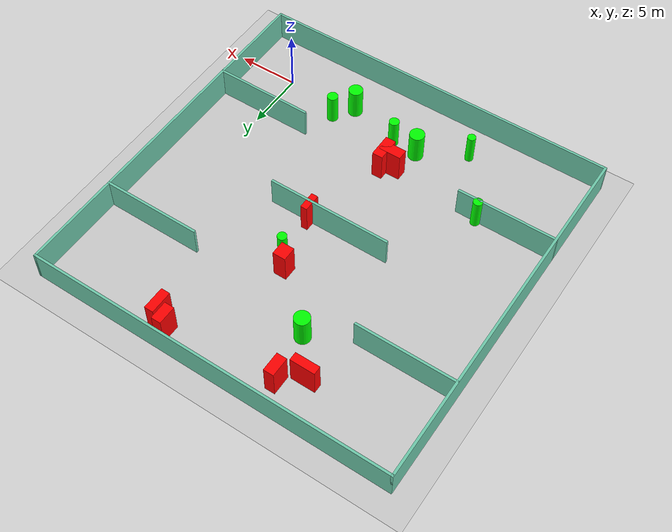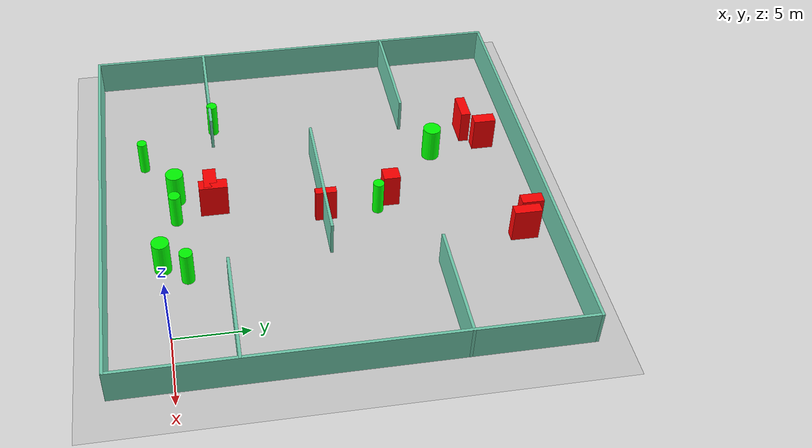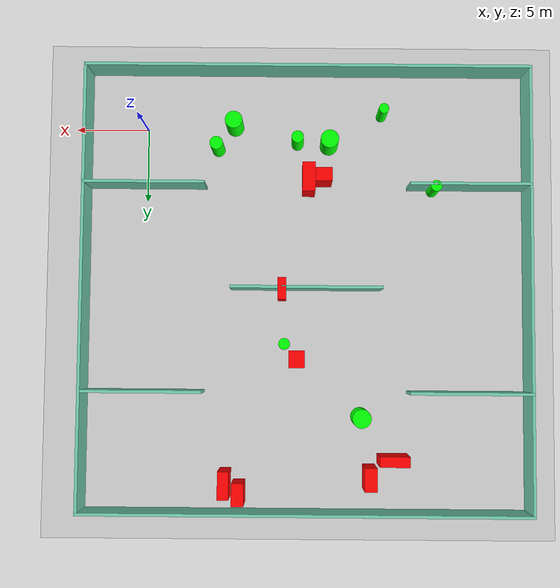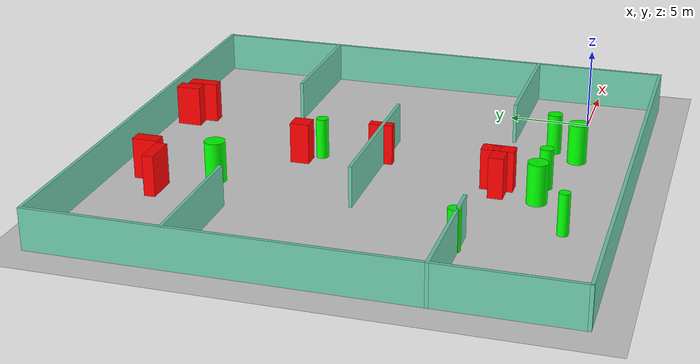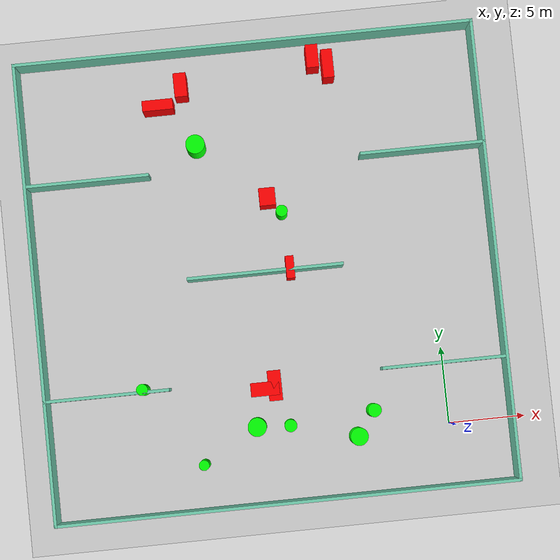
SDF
<sdf version="1.7">
 <world name="default">
  <light name="sun" type="directional">
   <pose>0 0 10 0 -0 0</pose>
   <diffuse>0.8 0.8 0.8 1</diffuse>
   <specular>0.2 0.2 0.2 1</specular>
   <attenuation>
    <range>1000</range>
    <constant>0.9</constant>
    <linear>0.01</linear>
    <quadratic>0.001</quadratic>
   </attenuation>
   <direction>-0.5 0.1 -0.9</direction>
   <spot><inner_angle>0</inner_angle><outer_angle>0</outer_angle><falloff>0</falloff></spot>
  </light>
  <model name="ground_plane">
   <static>1</static>
   <link name="link">
    <collision name="collision">
     <geometry><plane><normal>0 0 1</normal><size>100 100</size></plane></geometry>
     <surface>
      <contact><collide_bitmask>65535</collide_bitmask></contact>
      <friction><ode><mu>100</mu><mu2>50</mu2></ode></friction>
     </surface>
    </collision>
    <visual name="visual">
     <cast_shadows>0</cast_shadows>
     <geometry><plane><normal>0 0 1</normal><size>100 100</size></plane></geometry>
     <material>
      <script><uri>file://media/materials/scripts/gazebo.material</uri><name>Gazebo/Grey</name></script>
     </material>
    </visual>
   </link>
  </model>
  <gravity>0 0 -9.8</gravity>
  <magnetic_field>6e-06 2.3e-05 -4.2e-05</magnetic_field>
  <atmosphere type="adiabatic"/>
  <physics type="ode">
   <max_step_size>0.001</max_step_size>
   <real_time_factor>1</real_time_factor>
   <real_time_update_rate>1000</real_time_update_rate>
  </physics>
  <scene><ambient>0.4 0.4 0.4 1</ambient><background>0.7 0.7 0.7 1</background><shadows>1</shadows></scene>
  <spherical_coordinates>
   <surface_model>EARTH_WGS84</surface_model>
   <latitude_deg>0</latitude_deg>
   <longitude_deg>0</longitude_deg>
   <elevation>0</elevation>
   <heading_deg>0</heading_deg>
  </spherical_coordinates>
  <model name="my_base_walls">
   <link name="Wall_10">
    <collision name="Wall_10_Collision">
     <geometry><box><size>8.2 0.2 2.5</size></box></geometry>
     <pose>0 0 1.25 0 -0 0</pose>
    </collision>
    <visual name="Wall_10_Visual">
     <pose>0 0 1.25 0 -0 0</pose>
     <geometry><box><size>8.2 0.2 2.5</size></box></geometry>
     <material>
      <script><uri>file://media/materials/scripts/gazebo.material</uri><name>Gazebo/Grey</name></script>
      <ambient>0.435294 0.796078 0.67451 1</ambient>
     </material>
     <meta><layer>0</layer></meta>
    </visual>
    <pose>-11 -7 0 0 -0 0</pose>
   </link>
   <link name="Wall_12">
    <collision name="Wall_12_Collision">
     <geometry><box><size>8.2 0.2 2.5</size></box></geometry>
     <pose>0 0 1.25 0 -0 0</pose>
    </collision>
    <visual name="Wall_12_Visual">
     <pose>0 0 1.25 0 -0 0</pose>
     <geometry><box><size>8.2 0.2 2.5</size></box></geometry>
     <material>
      <script><uri>file://media/materials/scripts/gazebo.material</uri><name>Gazebo/Grey</name></script>
      <ambient>0.435294 0.796078 0.67451 1</ambient>
     </material>
     <meta><layer>0</layer></meta>
    </visual>
    <pose>-11 7 0 0 -0 0</pose>
   </link>
   <link name="Wall_14">
    <collision name="Wall_14_Collision">
     <geometry><box><size>8.2 0.2 2.5</size></box></geometry>
     <pose>0 0 1.25 0 -0 0</pose>
    </collision>
    <visual name="Wall_14_Visual">
     <pose>0 0 1.25 0 -0 0</pose>
     <geometry><box><size>8.2 0.2 2.5</size></box></geometry>
     <material>
      <script><uri>file://media/materials/scripts/gazebo.material</uri><name>Gazebo/Grey</name></script>
      <ambient>0.435294 0.796078 0.67451 1</ambient>
     </material>
     <meta><layer>0</layer></meta>
    </visual>
    <pose>11 7 0 0 -0 3.14159</pose>
   </link>
   <link name="Wall_16">
    <collision name="Wall_16_Collision">
     <geometry><box><size>10.2 0.2 2.5</size></box></geometry>
     <pose>0 0 1.25 0 -0 0</pose>
    </collision>
    <visual name="Wall_16_Visual">
     <pose>0 0 1.25 0 -0 0</pose>
     <geometry><box><size>10.2 0.2 2.5</size></box></geometry>
     <material>
      <script><uri>file://media/materials/scripts/gazebo.material</uri><name>Gazebo/Grey</name></script>
      <ambient>0.435294 0.796078 0.67451 1</ambient>
     </material>
     <meta><layer>0</layer></meta>
    </visual>
    <pose>0 0 0 0 -0 3.14159</pose>
   </link>
   <link name="Wall_2">
    <collision name="Wall_2_Collision">
     <geometry><box><size>30.2 0.2 2.5</size></box></geometry>
     <pose>0 0 1.25 0 -0 0</pose>
    </collision>
    <visual name="Wall_2_Visual">
     <pose>0 0 1.25 0 -0 0</pose>
     <geometry><box><size>30.2 0.2 2.5</size></box></geometry>
     <material>
      <script><uri>file://media/materials/scripts/gazebo.material</uri><name>Gazebo/Grey</name></script>
      <ambient>0.435294 0.796078 0.67451 1</ambient>
     </material>
     <meta><layer>0</layer></meta>
    </visual>
    <pose>0 -15 0 0 -0 3.14159</pose>
   </link>
   <link name="Wall_3">
    <collision name="Wall_3_Collision">
     <geometry><box><size>30.2 0.2 2.5</size></box></geometry>
     <pose>0 0 1.25 0 -0 0</pose>
    </collision>
    <visual name="Wall_3_Visual">
     <pose>0 0 1.25 0 -0 0</pose>
     <geometry><box><size>30.2 0.2 2.5</size></box></geometry>
     <material>
      <script><uri>file://media/materials/scripts/gazebo.material</uri><name>Gazebo/Grey</name></script>
      <ambient>0.435294 0.796078 0.67451 1</ambient>
     </material>
     <meta><layer>0</layer></meta>
    </visual>
    <pose>-15 0 0 0 -0 1.5708</pose>
   </link>
   <link name="Wall_4">
    <collision name="Wall_4_Collision">
     <geometry><box><size>30.2 0.2 2.5</size></box></geometry>
     <pose>0 0 1.25 0 -0 0</pose>
    </collision>
    <visual name="Wall_4_Visual">
     <pose>0 0 1.25 0 -0 0</pose>
     <geometry><box><size>30.2 0.2 2.5</size></box></geometry>
     <material>
      <script><uri>file://media/materials/scripts/gazebo.material</uri><name>Gazebo/Grey</name></script>
      <ambient>0.435294 0.796078 0.67451 1</ambient>
     </material>
     <meta><layer>0</layer></meta>
    </visual>
    <pose>0 15 0 0 -0 0</pose>
   </link>
   <link name="Wall_6">
    <collision name="Wall_6_Collision">
     <geometry><box><size>30.2 0.2 2.5</size></box></geometry>
     <pose>0 0 1.25 0 -0 0</pose>
    </collision>
    <visual name="Wall_6_Visual">
     <pose>0 0 1.25 0 -0 0</pose>
     <geometry><box><size>30.2 0.2 2.5</size></box></geometry>
     <material>
      <script><uri>file://media/materials/scripts/gazebo.material</uri><name>Gazebo/Grey</name></script>
      <ambient>0.435294 0.796078 0.67451 1</ambient>
     </material>
     <meta><layer>0</layer></meta>
    </visual>
    <pose>15 0 0 0 -0 1.5708</pose>
   </link>
   <link name="Wall_8">
    <collision name="Wall_8_Collision">
     <geometry><box><size>8.2 0.2 2.5</size></box></geometry>
     <pose>0 0 1.25 0 -0 0</pose>
    </collision>
    <visual name="Wall_8_Visual">
     <pose>0 0 1.25 0 -0 0</pose>
     <geometry><box><size>8.2 0.2 2.5</size></box></geometry>
     <material>
      <script><uri>file://media/materials/scripts/gazebo.material</uri><name>Gazebo/Grey</name></script>
      <ambient>0.435294 0.796078 0.67451 1</ambient>
     </material>
     <meta><layer>0</layer></meta>
    </visual>
    <pose>11 -7 0 0 -0 3.14159</pose>
   </link>
   <static>1</static>
   <pose>-11 11 0 0 -0 0</pose>
  </model>
  <model name="cylinder1">
   <static>1</static>
   <link name="link">
    <inertial>
     <mass>1</mass>
     <inertia><ixx>0.5</ixx><ixy>0</ixy><ixz>0</ixz><iyy>0.5</iyy><iyz>0</iyz><izz>1</izz></inertia>
    </inertial>
    <collision name="collision">
     <geometry><cylinder><radius>0.3777123724785565</radius><length>2.5</length></cylinder></geometry>
    </collision>
    <visual name="visual">
     <geometry><cylinder><radius>0.3777123724785565</radius><length>2.5</length></cylinder></geometry>
     <material>
      <ambient>0 1 0 1</ambient>
      <diffuse>0 1 0 1</diffuse>
      <specular>0.1 0.1 0.1 1</specular>
      <emissive>0 0 0 0</emissive>
     </material>
    </visual>
   </link>
   <pose>-9.539921380095755 14.793969372370118 1.25 0 0 0</pose>
  </model>
  <model name="cylinder2">
   <static>1</static>
   <link name="link">
    <inertial>
     <mass>1</mass>
     <inertia><ixx>0.5</ixx><ixy>0</ixy><ixz>0</ixz><iyy>0.5</iyy><iyz>0</iyz><izz>1</izz></inertia>
    </inertial>
    <collision name="collision">
     <geometry><cylinder><radius>0.33687647042585106</radius><length>2.5</length></cylinder></geometry>
    </collision>
    <visual name="visual">
     <geometry><cylinder><radius>0.33687647042585106</radius><length>2.5</length></cylinder></geometry>
     <material>
      <ambient>0 1 0 1</ambient>
      <diffuse>0 1 0 1</diffuse>
      <specular>0.1 0.1 0.1 1</specular>
      <emissive>0 0 0 0</emissive>
     </material>
    </visual>
   </link>
   <pose>-16.134414352069907 -1.0593684807289971 1.25 0 0 0</pose>
  </model>
  <model name="cylinder3">
   <static>1</static>
   <link name="link">
    <inertial>
     <mass>1</mass>
     <inertia><ixx>0.5</ixx><ixy>0</ixy><ixz>0</ixz><iyy>0.5</iyy><iyz>0</iyz><izz>1</izz></inertia>
    </inertial>
    <collision name="collision">
     <geometry><cylinder><radius>0.4079776801246438</radius><length>2.5</length></cylinder></geometry>
    </collision>
    <visual name="visual">
     <geometry><cylinder><radius>0.4079776801246438</radius><length>2.5</length></cylinder></geometry>
     <material>
      <ambient>0 1 0 1</ambient>
      <diffuse>0 1 0 1</diffuse>
      <specular>0.1 0.1 0.1 1</specular>
      <emissive>0 0 0 0</emissive>
     </material>
    </visual>
   </link>
   <pose>-10.34083616590507 0.9166256557676706 1.25 0 0 0</pose>
  </model>
  <model name="cylinder4">
   <static>1</static>
   <link name="link">
    <inertial>
     <mass>1</mass>
     <inertia><ixx>0.5</ixx><ixy>0</ixy><ixz>0</ixz><iyy>0.5</iyy><iyz>0</iyz><izz>1</izz></inertia>
    </inertial>
    <collision name="collision">
     <geometry><cylinder><radius>0.3747928205954342</radius><length>2.5</length></cylinder></geometry>
    </collision>
    <visual name="visual">
     <geometry><cylinder><radius>0.3747928205954342</radius><length>2.5</length></cylinder></geometry>
     <material>
      <ambient>0 1 0 1</ambient>
      <diffuse>0 1 0 1</diffuse>
      <specular>0.1 0.1 0.1 1</specular>
      <emissive>0 0 0 0</emissive>
     </material>
    </visual>
   </link>
   <pose>-19.653390713244306 4.163356941560471 1.25 0 0 0</pose>
  </model>
  <model name="cylinder5">
   <static>1</static>
   <link name="link">
    <inertial>
     <mass>1</mass>
     <inertia><ixx>0.5</ixx><ixy>0</ixy><ixz>0</ixz><iyy>0.5</iyy><iyz>0</iyz><izz>1</izz></inertia>
    </inertial>
    <collision name="collision">
     <geometry><cylinder><radius>0.5823942274581433</radius><length>2.5</length></cylinder></geometry>
    </collision>
    <visual name="visual">
     <geometry><cylinder><radius>0.5823942274581433</radius><length>2.5</length></cylinder></geometry>
     <material>
      <ambient>0 1 0 1</ambient>
      <diffuse>0 1 0 1</diffuse>
      <specular>0.1 0.1 0.1 1</specular>
      <emissive>0 0 0 0</emissive>
     </material>
    </visual>
   </link>
   <pose>-6.02400520213464 -0.22348586827197758 1.25 0 0 0</pose>
  </model>
  <model name="cylinder6">
   <static>1</static>
   <link name="link">
    <inertial>
     <mass>1</mass>
     <inertia><ixx>0.5</ixx><ixy>0</ixy><ixz>0</ixz><iyy>0.5</iyy><iyz>0</iyz><izz>1</izz></inertia>
    </inertial>
    <collision name="collision">
     <geometry><cylinder><radius>0.6097893058776964</radius><length>2.5</length></cylinder></geometry>
    </collision>
    <visual name="visual">
     <geometry><cylinder><radius>0.6097893058776964</radius><length>2.5</length></cylinder></geometry>
     <material>
      <ambient>0 1 0 1</ambient>
      <diffuse>0 1 0 1</diffuse>
      <specular>0.1 0.1 0.1 1</specular>
      <emissive>0 0 0 0</emissive>
     </material>
    </visual>
   </link>
   <pose>-12.503985095073343 1.036361589939169 1.25 0 0 0</pose>
  </model>
  <model name="cylinder7">
   <static>1</static>
   <link name="link">
    <inertial>
     <mass>1</mass>
     <inertia><ixx>0.5</ixx><ixy>0</ixy><ixz>0</ixz><iyy>0.5</iyy><iyz>0</iyz><izz>1</izz></inertia>
    </inertial>
    <collision name="collision">
     <geometry><cylinder><radius>0.6258433018643972</radius><length>2.5</length></cylinder></geometry>
    </collision>
    <visual name="visual">
     <geometry><cylinder><radius>0.6258433018643972</radius><length>2.5</length></cylinder></geometry>
     <material>
      <ambient>0 1 0 1</ambient>
      <diffuse>0 1 0 1</diffuse>
      <specular>0.1 0.1 0.1 1</specular>
      <emissive>0 0 0 0</emissive>
     </material>
    </visual>
   </link>
   <pose>-14.705141097641032 19.67894712882201 1.25 0 0 0</pose>
  </model>
  <model name="cylinder8">
   <static>1</static>
   <link name="link">
    <inertial>
     <mass>1</mass>
     <inertia><ixx>0.5</ixx><ixy>0</ixy><ixz>0</ixz><iyy>0.5</iyy><iyz>0</iyz><izz>1</izz></inertia>
    </inertial>
    <collision name="collision">
     <geometry><cylinder><radius>0.4414054354593393</radius><length>2.5</length></cylinder></geometry>
    </collision>
    <visual name="visual">
     <geometry><cylinder><radius>0.4414054354593393</radius><length>2.5</length></cylinder></geometry>
     <material>
      <ambient>0 1 0 1</ambient>
      <diffuse>0 1 0 1</diffuse>
      <specular>0.1 0.1 0.1 1</specular>
      <emissive>0 0 0 0</emissive>
     </material>
    </visual>
   </link>
   <pose>-4.879460717162617 1.363299016379976 1.25 0 0 0</pose>
  </model>
  <model name="box1">
   <static>1</static>
   <link name="link">
    <inertial>
     <mass>1</mass>
     <inertia><ixx>0.083</ixx><ixy>0</ixy><ixz>0</ixz><iyy>0.083</iyy><iyz>0</iyz><izz>0.083</izz></inertia>
    </inertial>
    <collision name="collision">
     <geometry><box><size>1.0589842979609314 1.1523695301121955 2.5</size></box></geometry>
    </collision>
    <visual name="visual">
     <geometry><box><size>1.0589842979609314 1.1523695301121955 2.5</size></box></geometry>
     <material>
      <ambient>1 0 0 1</ambient>
      <diffuse>1 0 0 1</diffuse>
      <specular>0.1 0.1 0.1 1</specular>
      <emissive>0 0 0 0</emissive>
     </material>
    </visual>
    <sensor name="my_contact" type="contact">
     <contact><collision>box_collision</collision><topic>__default_topic__</topic></contact>
    </sensor>
   </link>
   <pose>-10.38848320574541 15.810695718773463 1.25 0 0 0</pose>
  </model>
  <model name="box2">
   <static>1</static>
   <link name="link">
    <inertial>
     <mass>1</mass>
     <inertia><ixx>0.083</ixx><ixy>0</ixy><ixz>0</ixz><iyy>0.083</iyy><iyz>0</iyz><izz>0.083</izz></inertia>
    </inertial>
    <collision name="collision">
     <geometry><box><size>0.8688222447609006 1.9576440504131238 2.5</size></box></geometry>
    </collision>
    <visual name="visual">
     <geometry><box><size>0.8688222447609006 1.9576440504131238 2.5</size></box></geometry>
     <material>
      <ambient>1 0 0 1</ambient>
      <diffuse>1 0 0 1</diffuse>
      <specular>0.1 0.1 0.1 1</specular>
      <emissive>0 0 0 0</emissive>
     </material>
    </visual>
    <sensor name="my_contact" type="contact">
     <contact><collision>box_collision</collision><topic>__default_topic__</topic></contact>
    </sensor>
   </link>
   <pose>-11.112418089001252 3.588165626183102 1.25 0 0 0</pose>
  </model>
  <model name="box3">
   <static>1</static>
   <link name="link">
    <inertial>
     <mass>1</mass>
     <inertia><ixx>0.083</ixx><ixy>0</ixy><ixz>0</ixz><iyy>0.083</iyy><iyz>0</iyz><izz>0.083</izz></inertia>
    </inertial>
    <collision name="collision">
     <geometry><box><size>1.8474998026672107 0.89509411016957 2.5</size></box></geometry>
    </collision>
    <visual name="visual">
     <geometry><box><size>1.8474998026672107 0.89509411016957 2.5</size></box></geometry>
     <material>
      <ambient>1 0 0 1</ambient>
      <diffuse>1 0 0 1</diffuse>
      <specular>0.1 0.1 0.1 1</specular>
      <emissive>0 0 0 0</emissive>
     </material>
    </visual>
    <sensor name="my_contact" type="contact">
     <contact><collision>box_collision</collision><topic>__default_topic__</topic></contact>
    </sensor>
   </link>
   <pose>-11.762681047138072 3.426739156615568 1.25 0 0 0</pose>
  </model>
  <model name="box4">
   <static>1</static>
   <link name="link">
    <inertial>
     <mass>1</mass>
     <inertia><ixx>0.083</ixx><ixy>0</ixy><ixz>0</ixz><iyy>0.083</iyy><iyz>0</iyz><izz>0.083</izz></inertia>
    </inertial>
    <collision name="collision">
     <geometry><box><size>0.8053662608193033 1.509609732060753 2.5</size></box></geometry>
    </collision>
    <visual name="visual">
     <geometry><box><size>0.8053662608193033 1.509609732060753 2.5</size></box></geometry>
     <material>
      <ambient>1 0 0 1</ambient>
      <diffuse>1 0 0 1</diffuse>
      <specular>0.1 0.1 0.1 1</specular>
      <emissive>0 0 0 0</emissive>
     </material>
    </visual>
    <sensor name="my_contact" type="contact">
     <contact><collision>box_collision</collision><topic>__default_topic__</topic></contact>
    </sensor>
   </link>
   <pose>-6.554335218898867 24.69447149168508 1.25 0 0 0</pose>
  </model>
  <model name="box5">
   <static>1</static>
   <link name="link">
    <inertial>
     <mass>1</mass>
     <inertia><ixx>0.083</ixx><ixy>0</ixy><ixz>0</ixz><iyy>0.083</iyy><iyz>0</iyz><izz>0.083</izz></inertia>
    </inertial>
    <collision name="collision">
     <geometry><box><size>0.5497521377926257 1.4571269247797582 2.5</size></box></geometry>
    </collision>
    <visual name="visual">
     <geometry><box><size>0.5497521377926257 1.4571269247797582 2.5</size></box></geometry>
     <material>
      <ambient>1 0 0 1</ambient>
      <diffuse>1 0 0 1</diffuse>
      <specular>0.1 0.1 0.1 1</specular>
      <emissive>0 0 0 0</emissive>
     </material>
    </visual>
    <sensor name="my_contact" type="contact">
     <contact><collision>box_collision</collision><topic>__default_topic__</topic></contact>
    </sensor>
   </link>
   <pose>-9.363417629842345 11.109722985002094 1.25 0 0 0</pose>
  </model>
  <model name="box6">
   <static>1</static>
   <link name="link">
    <inertial>
     <mass>1</mass>
     <inertia><ixx>0.083</ixx><ixy>0</ixy><ixz>0</ixz><iyy>0.083</iyy><iyz>0</iyz><izz>0.083</izz></inertia>
    </inertial>
    <collision name="collision">
     <geometry><box><size>0.7364073615651815 1.8656394742017781 2.5</size></box></geometry>
    </collision>
    <visual name="visual">
     <geometry><box><size>0.7364073615651815 1.8656394742017781 2.5</size></box></geometry>
     <material>
      <ambient>1 0 0 1</ambient>
      <diffuse>1 0 0 1</diffuse>
      <specular>0.1 0.1 0.1 1</specular>
      <emissive>0 0 0 0</emissive>
     </material>
    </visual>
    <sensor name="my_contact" type="contact">
     <contact><collision>box_collision</collision><topic>__default_topic__</topic></contact>
    </sensor>
   </link>
   <pose>-5.6000041145681365 24.109176305906004 1.25 0 0 0</pose>
  </model>
  <model name="box7">
   <static>1</static>
   <link name="link">
    <inertial>
     <mass>1</mass>
     <inertia><ixx>0.083</ixx><ixy>0</ixy><ixz>0</ixz><iyy>0.083</iyy><iyz>0</iyz><izz>0.083</izz></inertia>
    </inertial>
    <collision name="collision">
     <geometry><box><size>0.8299819804359677 1.5602823110749822 2.5</size></box></geometry>
    </collision>
    <visual name="visual">
     <geometry><box><size>0.8299819804359677 1.5602823110749822 2.5</size></box></geometry>
     <material>
      <ambient>1 0 0 1</ambient>
      <diffuse>1 0 0 1</diffuse>
      <specular>0.1 0.1 0.1 1</specular>
      <emissive>0 0 0 0</emissive>
     </material>
    </visual>
    <sensor name="my_contact" type="contact">
     <contact><collision>box_collision</collision><topic>__default_topic__</topic></contact>
    </sensor>
   </link>
   <pose>-15.301973633126249 23.657098351237146 1.25 0 0 0</pose>
  </model>
  <model name="box8">
   <static>1</static>
   <link name="link">
    <inertial>
     <mass>1</mass>
     <inertia><ixx>0.083</ixx><ixy>0</ixy><ixz>0</ixz><iyy>0.083</iyy><iyz>0</iyz><izz>0.083</izz></inertia>
    </inertial>
    <collision name="collision">
     <geometry><box><size>2.0064396526196533 0.68497105837108 2.5</size></box></geometry>
    </collision>
    <visual name="visual">
     <geometry><box><size>2.0064396526196533 0.68497105837108 2.5</size></box></geometry>
     <material>
      <ambient>1 0 0 1</ambient>
      <diffuse>1 0 0 1</diffuse>
      <specular>0.1 0.1 0.1 1</specular>
      <emissive>0 0 0 0</emissive>
     </material>
    </visual>
    <sensor name="my_contact" type="contact">
     <contact><collision>box_collision</collision><topic>__default_topic__</topic></contact>
    </sensor>
   </link>
   <pose>-16.895819633105937 22.48695090876127 1.25 0 0 0</pose>
  </model>
 </world>
</sdf>
